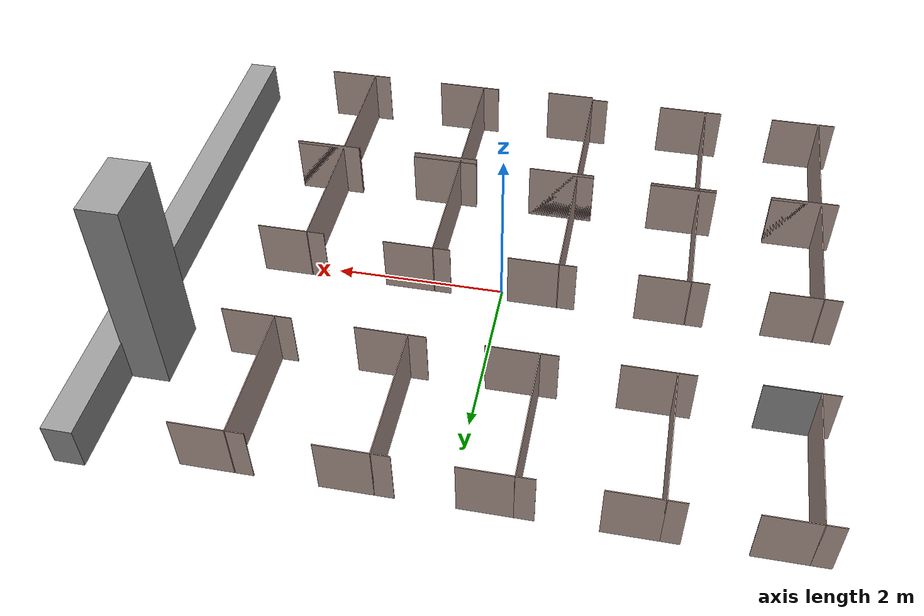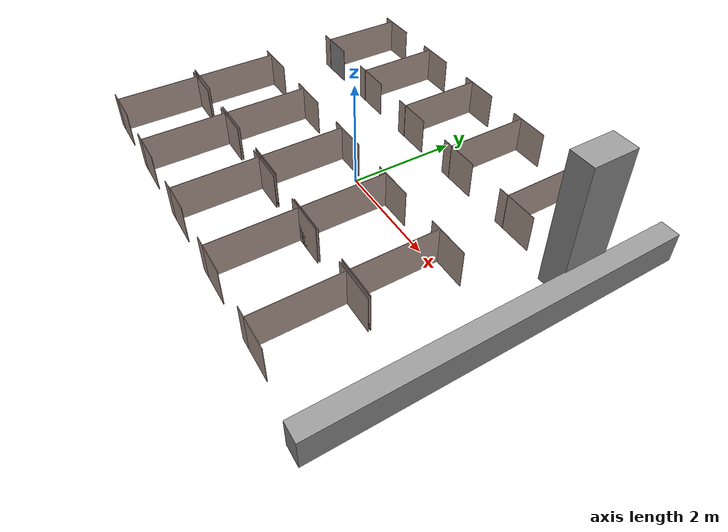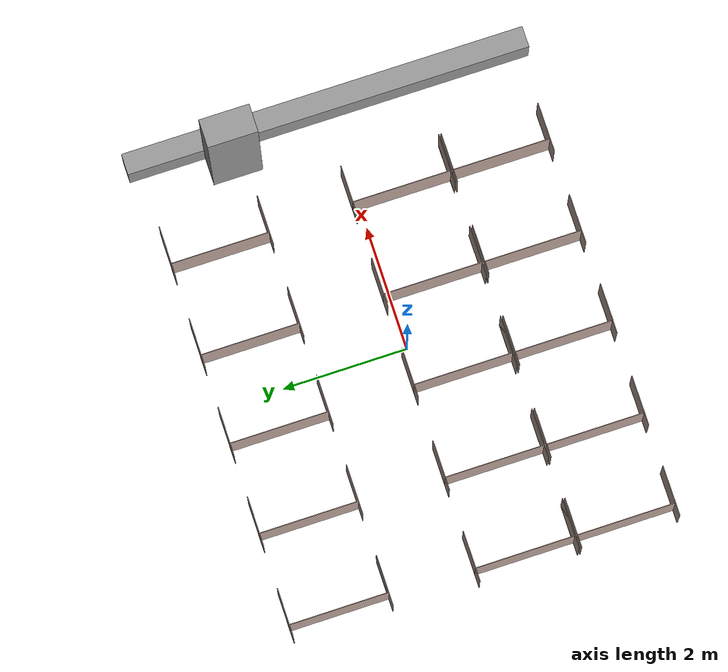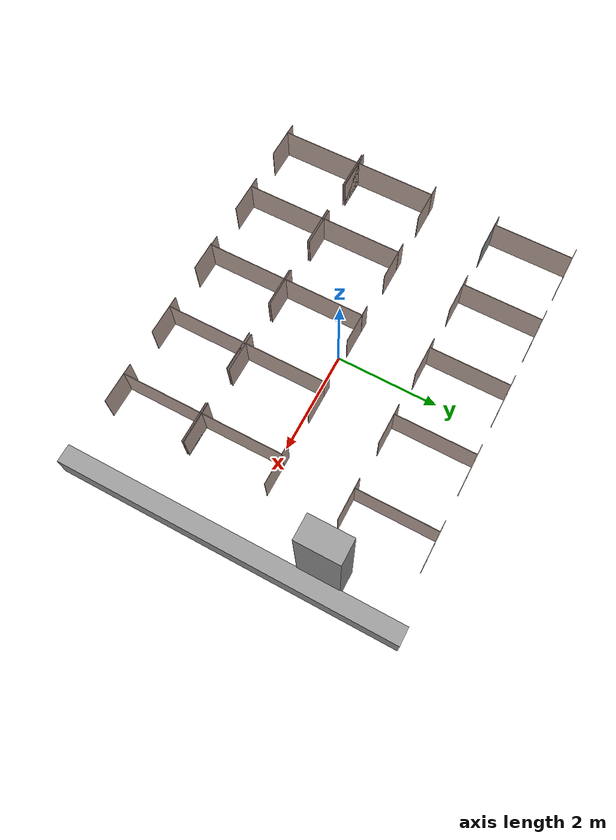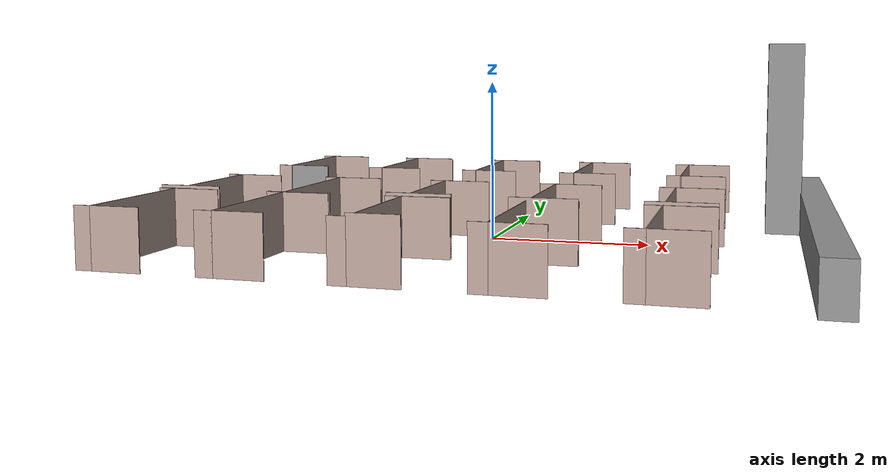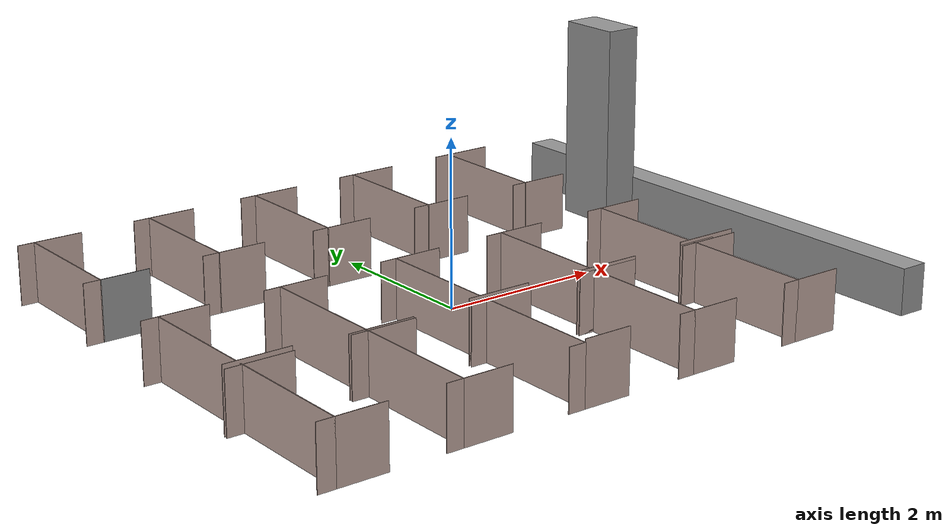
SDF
<?xml version='1.0'?>
<sdf version='1.6'>
  <model name='change_class4'>
    <pose frame=''>0.163402 0.008075 0 0 -0 0</pose>
    <link name='Wall_10'>
      <collision name='Wall_10_Collision'>
        <geometry>
          <box>
            <size>0.598 0.01 0.715</size>
          </box>
        </geometry>
        <pose frame=''>0 0 0.3575 0 -0 0</pose>
      </collision>
      <visual name='Wall_10_Visual'>
        <pose frame=''>0 0 0.3575 0 -0 0</pose>
        <geometry>
          <box>
            <size>0.598 0.01 0.715</size>
          </box>
        </geometry>
        <material>
          <script>
            <uri>file://media/materials/scripts/gazebo.material</uri>
            <name>Gazebo/Grey</name>
          </script>
          <ambient>0.760784 0.662745 0.627451 1</ambient>
        </material>
      </visual>
      <pose frame=''>-0.535402 1.46893 0 0 -0 0</pose>
    </link>
    <link name='Wall_12'>
      <collision name='Wall_12_Collision'>
        <geometry>
          <box>
            <size>0.598 0.01 0.715</size>
          </box>
        </geometry>
        <pose frame=''>0 0 0.3575 0 -0 0</pose>
      </collision>
      <visual name='Wall_12_Visual'>
        <pose frame=''>0 0 0.3575 0 -0 0</pose>
        <geometry>
          <box>
            <size>0.598 0.01 0.715</size>
          </box>
        </geometry>
        <material>
          <script>
            <uri>file://media/materials/scripts/gazebo.material</uri>
            <name>Gazebo/Grey</name>
          </script>
          <ambient>0.760784 0.662745 0.627451 1</ambient>
        </material>
      </visual>
      <pose frame=''>0.901598 1.46893 0 0 -0 0</pose>
    </link>
    <link name='Wall_138'>
      <collision name='Wall_138_Collision'>
        <geometry>
          <box>
            <size>0.593 0.01 0.715</size>
          </box>
        </geometry>
        <pose frame=''>0 0 0.3575 0 -0 0</pose>
      </collision>
      <visual name='Wall_138_Visual'>
        <pose frame=''>0 0 0.3575 0 -0 0</pose>
        <geometry>
          <box>
            <size>0.593 0.01 0.715</size>
          </box>
        </geometry>
        <material>
          <script>
            <uri>file://media/materials/scripts/gazebo.material</uri>
            <name>Gazebo/Grey</name>
          </script>
          <ambient>0.760784 0.662745 0.627451 1</ambient>
        </material>
      </visual>
      <pose frame=''>-3.4519 3.04292 0 0 -0 0</pose>
    </link>
    <link name='Wall_14'>
      <collision name='Wall_14_Collision'>
        <geometry>
          <box>
            <size>0.61 0.01 0.715</size>
          </box>
        </geometry>
        <pose frame=''>0 0 0.3575 0 -0 0</pose>
      </collision>
      <visual name='Wall_14_Visual'>
        <pose frame=''>0 0 0.3575 0 -0 0</pose>
        <geometry>
          <box>
            <size>0.61 0.01 0.715</size>
          </box>
        </geometry>
        <material>
          <script>
            <uri>file://media/materials/scripts/gazebo.material</uri>
            <name>Gazebo/Grey</name>
          </script>
          <ambient>0.760784 0.662745 0.627451 1</ambient>
        </material>
      </visual>
      <pose frame=''>2.3996 1.46893 0 0 -0 0</pose>
    </link>
    <link name='Wall_140'>
      <collision name='Wall_140_Collision'>
        <geometry>
          <box>
            <size>0.598 0.01 0.715</size>
          </box>
        </geometry>
        <pose frame=''>0 0 0.3575 0 -0 0</pose>
      </collision>
      <visual name='Wall_140_Visual'>
        <pose frame=''>0 0 0.3575 0 -0 0</pose>
        <geometry>
          <box>
            <size>0.598 0.01 0.715</size>
          </box>
        </geometry>
        <material>
          <script>
            <uri>file://media/materials/scripts/gazebo.material</uri>
            <name>Gazebo/Grey</name>
          </script>
          <ambient>0.760784 0.662745 0.627451 1</ambient>
        </material>
      </visual>
      <pose frame=''>-1.9864 3.04292 0 0 -0 0</pose>
    </link>
    <link name='Wall_143'>
      <collision name='Wall_143_Collision'>
        <geometry>
          <box>
            <size>0.598 0.01 0.715</size>
          </box>
        </geometry>
        <pose frame=''>0 0 0.3575 0 -0 0</pose>
      </collision>
      <visual name='Wall_143_Visual'>
        <pose frame=''>0 0 0.3575 0 -0 0</pose>
        <geometry>
          <box>
            <size>0.598 0.01 0.715</size>
          </box>
        </geometry>
        <material>
          <script>
            <uri>file://media/materials/scripts/gazebo.material</uri>
            <name>Gazebo/Grey</name>
          </script>
          <ambient>0.760784 0.662745 0.627451 1</ambient>
        </material>
      </visual>
      <pose frame=''>-0.535402 3.04292 0 0 -0 0</pose>
    </link>
    <link name='Wall_147'>
      <collision name='Wall_147_Collision'>
        <geometry>
          <box>
            <size>0.598 0.01 0.715</size>
          </box>
        </geometry>
        <pose frame=''>0 0 0.3575 0 -0 0</pose>
      </collision>
      <visual name='Wall_147_Visual'>
        <pose frame=''>0 0 0.3575 0 -0 0</pose>
        <geometry>
          <box>
            <size>0.598 0.01 0.715</size>
          </box>
        </geometry>
        <material>
          <script>
            <uri>file://media/materials/scripts/gazebo.material</uri>
            <name>Gazebo/Grey</name>
          </script>
          <ambient>0.760784 0.662745 0.627451 1</ambient>
        </material>
      </visual>
      <pose frame=''>0.901598 3.04292 0 0 -0 0</pose>
    </link>
    <link name='Wall_153'>
      <collision name='Wall_153_Collision'>
        <geometry>
          <box>
            <size>0.609517 0.01 0.715</size>
          </box>
        </geometry>
        <pose frame=''>0 0 0.3575 0 -0 0</pose>
      </collision>
      <visual name='Wall_153_Visual'>
        <pose frame=''>0 0 0.3575 0 -0 0</pose>
        <geometry>
          <box>
            <size>0.609517 0.01 0.715</size>
          </box>
        </geometry>
        <material>
          <script>
            <uri>file://media/materials/scripts/gazebo.material</uri>
            <name>Gazebo/Grey</name>
          </script>
          <ambient>0.760784 0.662745 0.627451 1</ambient>
        </material>
      </visual>
      <pose frame=''>2.3996 3.04292 0 0 -0 0</pose>
    </link>
    <link name='Wall_16'>
      <collision name='Wall_16_Collision'>
        <geometry>
          <box>
            <size>0.598 0.01 0.715</size>
          </box>
        </geometry>
        <pose frame=''>0 0 0.3575 0 -0 0</pose>
      </collision>
      <visual name='Wall_16_Visual'>
        <pose frame=''>0 0 0.3575 0 -0 0</pose>
        <geometry>
          <box>
            <size>0.598 0.01 0.715</size>
          </box>
        </geometry>
        <material>
          <script>
            <uri>file://media/materials/scripts/gazebo.material</uri>
            <name>Gazebo/Grey</name>
          </script>
          <ambient>0.760784 0.662745 0.627451 1</ambient>
        </material>
      </visual>
      <pose frame=''>-3.5094 0.108925 0 0 -0 0</pose>
    </link>
    <link name='Wall_18'>
      <collision name='Wall_18_Collision'>
        <geometry>
          <box>
            <size>0.598 0.01 0.715</size>
          </box>
        </geometry>
        <pose frame=''>0 0 0.3575 0 -0 0</pose>
      </collision>
      <visual name='Wall_18_Visual'>
        <pose frame=''>0 0 0.3575 0 -0 0</pose>
        <geometry>
          <box>
            <size>0.598 0.01 0.715</size>
          </box>
        </geometry>
        <material>
          <script>
            <uri>file://media/materials/scripts/gazebo.material</uri>
            <name>Gazebo/Grey</name>
          </script>
          <ambient>0.760784 0.662745 0.627451 1</ambient>
        </material>
      </visual>
      <pose frame=''>-2.0494 0.108925 0 0 -0 0</pose>
    </link>
    <link name='Wall_193'>
      <collision name='Wall_193_Collision'>
        <geometry>
          <box>
            <size>1.584 0.01 0.715</size>
          </box>
        </geometry>
        <pose frame=''>0 0 0.3575 0 -0 0</pose>
      </collision>
      <visual name='Wall_193_Visual'>
        <pose frame=''>0 0 0.3575 0 -0 0</pose>
        <geometry>
          <box>
            <size>1.584 0.01 0.715</size>
          </box>
        </geometry>
        <material>
          <script>
            <uri>file://media/materials/scripts/gazebo.material</uri>
            <name>Gazebo/Grey</name>
          </script>
          <ambient>0.760784 0.662745 0.627451 1</ambient>
        </material>
      </visual>
      <pose frame=''>-2.2804 2.25592 0 0 0 -1.5708</pose>
    </link>
    <link name='Wall_195'>
      <collision name='Wall_195_Collision'>
        <geometry>
          <box>
            <size>1.584 0.01 0.715</size>
          </box>
        </geometry>
        <pose frame=''>0 0 0.3575 0 -0 0</pose>
      </collision>
      <visual name='Wall_195_Visual'>
        <pose frame=''>0 0 0.3575 0 -0 0</pose>
        <geometry>
          <box>
            <size>1.584 0.01 0.715</size>
          </box>
        </geometry>
        <material>
          <script>
            <uri>file://media/materials/scripts/gazebo.material</uri>
            <name>Gazebo/Grey</name>
          </script>
          <ambient>0.760784 0.662745 0.627451 1</ambient>
        </material>
      </visual>
      <pose frame=''>-0.829402 2.25592 0 0 0 -1.5708</pose>
    </link>
    <link name='Wall_197'>
      <collision name='Wall_197_Collision'>
        <geometry>
          <box>
            <size>1.584 0.01 0.715</size>
          </box>
        </geometry>
        <pose frame=''>0 0 0.3575 0 -0 0</pose>
      </collision>
      <visual name='Wall_197_Visual'>
        <pose frame=''>0 0 0.3575 0 -0 0</pose>
        <geometry>
          <box>
            <size>1.584 0.01 0.715</size>
          </box>
        </geometry>
        <material>
          <script>
            <uri>file://media/materials/scripts/gazebo.material</uri>
            <name>Gazebo/Grey</name>
          </script>
          <ambient>0.760784 0.662745 0.627451 1</ambient>
        </material>
      </visual>
      <pose frame=''>0.607598 2.25592 0 0 0 -1.5708</pose>
    </link>
    <link name='Wall_199'>
      <collision name='Wall_199_Collision'>
        <geometry>
          <box>
            <size>1.58405 0.01 0.715</size>
          </box>
        </geometry>
        <pose frame=''>0 0 0.3575 0 -0 0</pose>
      </collision>
      <visual name='Wall_199_Visual'>
        <pose frame=''>0 0 0.3575 0 -0 0</pose>
        <geometry>
          <box>
            <size>1.58405 0.01 0.715</size>
          </box>
        </geometry>
        <material>
          <script>
            <uri>file://media/materials/scripts/gazebo.material</uri>
            <name>Gazebo/Grey</name>
          </script>
          <ambient>0.760784 0.662745 0.627451 1</ambient>
        </material>
      </visual>
      <pose frame=''>2.0996 2.25592 0 0 0 -1.5708</pose>
    </link>
    <link name='Wall_20'>
      <collision name='Wall_20_Collision'>
        <geometry>
          <box>
            <size>0.598 0.01 0.715</size>
          </box>
        </geometry>
        <pose frame=''>0 0 0.3575 0 -0 0</pose>
      </collision>
      <visual name='Wall_20_Visual'>
        <pose frame=''>0 0 0.3575 0 -0 0</pose>
        <geometry>
          <box>
            <size>0.598 0.01 0.715</size>
          </box>
        </geometry>
        <material>
          <script>
            <uri>file://media/materials/scripts/gazebo.material</uri>
            <name>Gazebo/Grey</name>
          </script>
          <ambient>0.760784 0.662745 0.627451 1</ambient>
        </material>
      </visual>
      <pose frame=''>-0.547402 0.108925 0 0 -0 0</pose>
    </link>
    <link name='Wall_203'>
      <collision name='Wall_203_Collision'>
        <geometry>
          <box>
            <size>3.194 0.01 0.715</size>
          </box>
        </geometry>
        <pose frame=''>0 0 0.3575 0 -0 0</pose>
      </collision>
      <visual name='Wall_203_Visual'>
        <pose frame=''>0 0 0.3575 0 -0 0</pose>
        <geometry>
          <box>
            <size>3.194 0.01 0.715</size>
          </box>
        </geometry>
        <material>
          <script>
            <uri>file://media/materials/scripts/gazebo.material</uri>
            <name>Gazebo/Grey</name>
          </script>
          <ambient>0.760784 0.662745 0.627451 1</ambient>
        </material>
      </visual>
      <pose frame=''>-3.8034 -1.48307 0 0 0 -1.5708</pose>
    </link>
    <link name='Wall_205'>
      <collision name='Wall_205_Collision'>
        <geometry>
          <box>
            <size>3.194 0.01 0.715</size>
          </box>
        </geometry>
        <pose frame=''>0 0 0.3575 0 -0 0</pose>
      </collision>
      <visual name='Wall_205_Visual'>
        <pose frame=''>0 0 0.3575 0 -0 0</pose>
        <geometry>
          <box>
            <size>3.194 0.01 0.715</size>
          </box>
        </geometry>
        <material>
          <script>
            <uri>file://media/materials/scripts/gazebo.material</uri>
            <name>Gazebo/Grey</name>
          </script>
          <ambient>0.760784 0.662745 0.627451 1</ambient>
        </material>
      </visual>
      <pose frame=''>-2.3434 -1.48307 0 0 0 -1.5708</pose>
    </link>
    <link name='Wall_207'>
      <collision name='Wall_207_Collision'>
        <geometry>
          <box>
            <size>3.194 0.01 0.715</size>
          </box>
        </geometry>
        <pose frame=''>0 0 0.3575 0 -0 0</pose>
      </collision>
      <visual name='Wall_207_Visual'>
        <pose frame=''>0 0 0.3575 0 -0 0</pose>
        <geometry>
          <box>
            <size>3.194 0.01 0.715</size>
          </box>
        </geometry>
        <material>
          <script>
            <uri>file://media/materials/scripts/gazebo.material</uri>
            <name>Gazebo/Grey</name>
          </script>
          <ambient>0.760784 0.662745 0.627451 1</ambient>
        </material>
      </visual>
      <pose frame=''>-0.841402 -1.48307 0 0 0 -1.5708</pose>
    </link>
    <link name='Wall_209'>
      <collision name='Wall_209_Collision'>
        <geometry>
          <box>
            <size>3.194 0.01 0.715</size>
          </box>
        </geometry>
        <pose frame=''>0 0 0.3575 0 -0 0</pose>
      </collision>
      <visual name='Wall_209_Visual'>
        <pose frame=''>0 0 0.3575 0 -0 0</pose>
        <geometry>
          <box>
            <size>3.194 0.01 0.715</size>
          </box>
        </geometry>
        <material>
          <script>
            <uri>file://media/materials/scripts/gazebo.material</uri>
            <name>Gazebo/Grey</name>
          </script>
          <ambient>0.760784 0.662745 0.627451 1</ambient>
        </material>
      </visual>
      <pose frame=''>0.636598 -1.48307 0 0 0 -1.5708</pose>
    </link>
    <link name='Wall_211'>
      <collision name='Wall_211_Collision'>
        <geometry>
          <box>
            <size>3.194 0.01 0.715</size>
          </box>
        </geometry>
        <pose frame=''>0 0 0.3575 0 -0 0</pose>
      </collision>
      <visual name='Wall_211_Visual'>
        <pose frame=''>0 0 0.3575 0 -0 0</pose>
        <geometry>
          <box>
            <size>3.194 0.01 0.715</size>
          </box>
        </geometry>
        <material>
          <script>
            <uri>file://media/materials/scripts/gazebo.material</uri>
            <name>Gazebo/Grey</name>
          </script>
          <ambient>0.760784 0.662745 0.627451 1</ambient>
        </material>
      </visual>
      <pose frame=''>2.1506 -1.48307 0 0 0 -1.5708</pose>
    </link>
    <link name='Wall_214'>
      <collision name='Wall_214_Collision'>
        <geometry>
          <box>
            <size>0.01 0.01 0.715</size>
          </box>
        </geometry>
        <pose frame=''>0 0 0.3575 0 -0 0</pose>
      </collision>
      <visual name='Wall_214_Visual'>
        <pose frame=''>0 0 0.3575 0 -0 0</pose>
        <geometry>
          <box>
            <size>0.01 0.01 0.715</size>
          </box>
        </geometry>
        <material>
          <script>
            <uri>file://media/materials/scripts/gazebo.material</uri>
            <name>Gazebo/Grey</name>
          </script>
          <ambient>0.760784 0.662745 0.627451 1</ambient>
        </material>
      </visual>
      <pose frame=''>-3.7434 1.46893 0 0 -0 0</pose>
    </link>
    <link name='Wall_216'>
      <collision name='Wall_216_Collision'>
        <geometry>
          <box>
            <size>0.01 0.01 0.715</size>
          </box>
        </geometry>
        <pose frame=''>0 0 0.3575 0 -0 0</pose>
      </collision>
      <visual name='Wall_216_Visual'>
        <pose frame=''>0 0 0.3575 0 -0 0</pose>
        <geometry>
          <box>
            <size>0.01 0.01 0.715</size>
          </box>
        </geometry>
        <material>
          <script>
            <uri>file://media/materials/scripts/gazebo.material</uri>
            <name>Gazebo/Grey</name>
          </script>
          <ambient>0.760784 0.662745 0.627451 1</ambient>
        </material>
      </visual>
      <pose frame=''>-3.7434 1.46893 0 0 -0 0</pose>
    </link>
    <link name='Wall_218'>
      <collision name='Wall_218_Collision'>
        <geometry>
          <box>
            <size>0.01 0.01 0.715</size>
          </box>
        </geometry>
        <pose frame=''>0 0 0.3575 0 -0 0</pose>
      </collision>
      <visual name='Wall_218_Visual'>
        <pose frame=''>0 0 0.3575 0 -0 0</pose>
        <geometry>
          <box>
            <size>0.01 0.01 0.715</size>
          </box>
        </geometry>
        <material>
          <script>
            <uri>file://media/materials/scripts/gazebo.material</uri>
            <name>Gazebo/Grey</name>
          </script>
          <ambient>1 1 1 1</ambient>
        </material>
      </visual>
      <pose frame=''>-3.7434 3.04292 0 0 -0 0</pose>
    </link>
    <link name='Wall_222'>
      <collision name='Wall_222_Collision'>
        <geometry>
          <box>
            <size>1.584 0.01 0.715</size>
          </box>
        </geometry>
        <pose frame=''>0 0 0.3575 0 -0 0</pose>
      </collision>
      <visual name='Wall_222_Visual'>
        <pose frame=''>0 0 0.3575 0 -0 0</pose>
        <geometry>
          <box>
            <size>1.584 0.01 0.715</size>
          </box>
        </geometry>
        <material>
          <script>
            <uri>file://media/materials/scripts/gazebo.material</uri>
            <name>Gazebo/Grey</name>
          </script>
          <ambient>0.760784 0.662745 0.627451 1</ambient>
        </material>
      </visual>
      <pose frame=''>-3.7434 2.25592 0 0 -0 1.5708</pose>
    </link>
    <link name='Wall_224'>
      <collision name='Wall_224_Collision'>
        <geometry>
          <box>
            <size>0.21 0.01 0.715</size>
          </box>
        </geometry>
        <pose frame=''>0 0 0.3575 0 -0 0</pose>
      </collision>
      <visual name='Wall_224_Visual'>
        <pose frame=''>0 0 0.3575 0 -0 0</pose>
        <geometry>
          <box>
            <size>0.21 0.01 0.715</size>
          </box>
        </geometry>
        <material>
          <script>
            <uri>file://media/materials/scripts/gazebo.material</uri>
            <name>Gazebo/Grey</name>
          </script>
          <ambient>0.760784 0.662745 0.627451 1</ambient>
        </material>
      </visual>
      <pose frame=''>-3.8434 3.04292 0 0 -0 0</pose>
    </link>
    <link name='Wall_226'>
      <collision name='Wall_226_Collision'>
        <geometry>
          <box>
            <size>0.21 0.01 0.715</size>
          </box>
        </geometry>
        <pose frame=''>0 0 0.3575 0 -0 0</pose>
      </collision>
      <visual name='Wall_226_Visual'>
        <pose frame=''>0 0 0.3575 0 -0 0</pose>
        <geometry>
          <box>
            <size>0.21 0.01 0.715</size>
          </box>
        </geometry>
        <material>
          <script>
            <uri>file://media/materials/scripts/gazebo.material</uri>
            <name>Gazebo/Grey</name>
          </script>
          <ambient>0.760784 0.662745 0.627451 1</ambient>
        </material>
      </visual>
      <pose frame=''>-3.8434 1.46893 0 0 -0 0</pose>
    </link>
    <link name='Wall_228'>
      <collision name='Wall_228_Collision'>
        <geometry>
          <box>
            <size>0.21 0.01 0.715</size>
          </box>
        </geometry>
        <pose frame=''>0 0 0.3575 0 -0 0</pose>
      </collision>
      <visual name='Wall_228_Visual'>
        <pose frame=''>0 0 0.3575 0 -0 0</pose>
        <geometry>
          <box>
            <size>0.21 0.01 0.715</size>
          </box>
        </geometry>
        <material>
          <script>
            <uri>file://media/materials/scripts/gazebo.material</uri>
            <name>Gazebo/Grey</name>
          </script>
          <ambient>0.760784 0.662745 0.627451 1</ambient>
        </material>
      </visual>
      <pose frame=''>-2.3804 3.04292 0 0 -0 0</pose>
    </link>
    <link name='Wall_230'>
      <collision name='Wall_230_Collision'>
        <geometry>
          <box>
            <size>0.21 0.01 0.715</size>
          </box>
        </geometry>
        <pose frame=''>0 0 0.3575 0 -0 0</pose>
      </collision>
      <visual name='Wall_230_Visual'>
        <pose frame=''>0 0 0.3575 0 -0 0</pose>
        <geometry>
          <box>
            <size>0.21 0.01 0.715</size>
          </box>
        </geometry>
        <material>
          <script>
            <uri>file://media/materials/scripts/gazebo.material</uri>
            <name>Gazebo/Grey</name>
          </script>
          <ambient>0.760784 0.662745 0.627451 1</ambient>
        </material>
      </visual>
      <pose frame=''>-2.3804 1.46893 0 0 -0 0</pose>
    </link>
    <link name='Wall_232'>
      <collision name='Wall_232_Collision'>
        <geometry>
          <box>
            <size>0.21 0.01 0.715</size>
          </box>
        </geometry>
        <pose frame=''>0 0 0.3575 0 -0 0</pose>
      </collision>
      <visual name='Wall_232_Visual'>
        <pose frame=''>0 0 0.3575 0 -0 0</pose>
        <geometry>
          <box>
            <size>0.21 0.01 0.715</size>
          </box>
        </geometry>
        <material>
          <script>
            <uri>file://media/materials/scripts/gazebo.material</uri>
            <name>Gazebo/Grey</name>
          </script>
          <ambient>0.760784 0.662745 0.627451 1</ambient>
        </material>
      </visual>
      <pose frame=''>-0.929402 1.46893 0 0 -0 0</pose>
    </link>
    <link name='Wall_234'>
      <collision name='Wall_234_Collision'>
        <geometry>
          <box>
            <size>0.21 0.01 0.715</size>
          </box>
        </geometry>
        <pose frame=''>0 0 0.3575 0 -0 0</pose>
      </collision>
      <visual name='Wall_234_Visual'>
        <pose frame=''>0 0 0.3575 0 -0 0</pose>
        <geometry>
          <box>
            <size>0.21 0.01 0.715</size>
          </box>
        </geometry>
        <material>
          <script>
            <uri>file://media/materials/scripts/gazebo.material</uri>
            <name>Gazebo/Grey</name>
          </script>
          <ambient>0.760784 0.662745 0.627451 1</ambient>
        </material>
      </visual>
      <pose frame=''>-0.929402 3.04292 0 0 -0 0</pose>
    </link>
    <link name='Wall_236'>
      <collision name='Wall_236_Collision'>
        <geometry>
          <box>
            <size>0.21 0.01 0.715</size>
          </box>
        </geometry>
        <pose frame=''>0 0 0.3575 0 -0 0</pose>
      </collision>
      <visual name='Wall_236_Visual'>
        <pose frame=''>0 0 0.3575 0 -0 0</pose>
        <geometry>
          <box>
            <size>0.21 0.01 0.715</size>
          </box>
        </geometry>
        <material>
          <script>
            <uri>file://media/materials/scripts/gazebo.material</uri>
            <name>Gazebo/Grey</name>
          </script>
          <ambient>0.760784 0.662745 0.627451 1</ambient>
        </material>
      </visual>
      <pose frame=''>0.507598 1.46893 0 0 -0 0</pose>
    </link>
    <link name='Wall_238'>
      <collision name='Wall_238_Collision'>
        <geometry>
          <box>
            <size>0.21 0.01 0.715</size>
          </box>
        </geometry>
        <pose frame=''>0 0 0.3575 0 -0 0</pose>
      </collision>
      <visual name='Wall_238_Visual'>
        <pose frame=''>0 0 0.3575 0 -0 0</pose>
        <geometry>
          <box>
            <size>0.21 0.01 0.715</size>
          </box>
        </geometry>
        <material>
          <script>
            <uri>file://media/materials/scripts/gazebo.material</uri>
            <name>Gazebo/Grey</name>
          </script>
          <ambient>0.760784 0.662745 0.627451 1</ambient>
        </material>
      </visual>
      <pose frame=''>0.507598 3.04292 0 0 -0 0</pose>
    </link>
    <link name='Wall_24'>
      <collision name='Wall_24_Collision'>
        <geometry>
          <box>
            <size>0.598 0.01 0.715</size>
          </box>
        </geometry>
        <pose frame=''>0 0 0.3575 0 -0 0</pose>
      </collision>
      <visual name='Wall_24_Visual'>
        <pose frame=''>0 0 0.3575 0 -0 0</pose>
        <geometry>
          <box>
            <size>0.598 0.01 0.715</size>
          </box>
        </geometry>
        <material>
          <script>
            <uri>file://media/materials/scripts/gazebo.material</uri>
            <name>Gazebo/Grey</name>
          </script>
          <ambient>0.760784 0.662745 0.627451 1</ambient>
        </material>
      </visual>
      <pose frame=''>2.4446 0.108925 0 0 -0 0</pose>
    </link>
    <link name='Wall_240'>
      <collision name='Wall_240_Collision'>
        <geometry>
          <box>
            <size>0.198 0.01 0.715</size>
          </box>
        </geometry>
        <pose frame=''>0 0 0.3575 0 -0 0</pose>
      </collision>
      <visual name='Wall_240_Visual'>
        <pose frame=''>0 0 0.3575 0 -0 0</pose>
        <geometry>
          <box>
            <size>0.198 0.01 0.715</size>
          </box>
        </geometry>
        <material>
          <script>
            <uri>file://media/materials/scripts/gazebo.material</uri>
            <name>Gazebo/Grey</name>
          </script>
          <ambient>0.760784 0.662745 0.627451 1</ambient>
        </material>
      </visual>
      <pose frame=''>2.0056 1.46893 0 0 -0 0</pose>
    </link>
    <link name='Wall_242'>
      <collision name='Wall_242_Collision'>
        <geometry>
          <box>
            <size>0.21 0.01 0.715</size>
          </box>
        </geometry>
        <pose frame=''>0 0 0.3575 0 -0 0</pose>
      </collision>
      <visual name='Wall_242_Visual'>
        <pose frame=''>0 0 0.3575 0 -0 0</pose>
        <geometry>
          <box>
            <size>0.21 0.01 0.715</size>
          </box>
        </geometry>
        <material>
          <script>
            <uri>file://media/materials/scripts/gazebo.material</uri>
            <name>Gazebo/Grey</name>
          </script>
          <ambient>0.760784 0.662745 0.627451 1</ambient>
        </material>
      </visual>
      <pose frame=''>1.9996 3.04292 0 0 -0 0</pose>
    </link>
    <link name='Wall_244'>
      <collision name='Wall_244_Collision'>
        <geometry>
          <box>
            <size>0.21 0.01 0.715</size>
          </box>
        </geometry>
        <pose frame=''>0 0 0.3575 0 -0 0</pose>
      </collision>
      <visual name='Wall_244_Visual'>
        <pose frame=''>0 0 0.3575 0 -0 0</pose>
        <geometry>
          <box>
            <size>0.21 0.01 0.715</size>
          </box>
        </geometry>
        <material>
          <script>
            <uri>file://media/materials/scripts/gazebo.material</uri>
            <name>Gazebo/Grey</name>
          </script>
          <ambient>0.760784 0.662745 0.627451 1</ambient>
        </material>
      </visual>
      <pose frame=''>-3.9034 0.108925 0 0 -0 0</pose>
    </link>
    <link name='Wall_246'>
      <collision name='Wall_246_Collision'>
        <geometry>
          <box>
            <size>0.21 0.01 0.715</size>
          </box>
        </geometry>
        <pose frame=''>0 0 0.3575 0 -0 0</pose>
      </collision>
      <visual name='Wall_246_Visual'>
        <pose frame=''>0 0 0.3575 0 -0 0</pose>
        <geometry>
          <box>
            <size>0.21 0.01 0.715</size>
          </box>
        </geometry>
        <material>
          <script>
            <uri>file://media/materials/scripts/gazebo.material</uri>
            <name>Gazebo/Grey</name>
          </script>
          <ambient>0.760784 0.662745 0.627451 1</ambient>
        </material>
      </visual>
      <pose frame=''>-3.9034 -3.07508 0 0 -0 0</pose>
    </link>
    <link name='Wall_248'>
      <collision name='Wall_248_Collision'>
        <geometry>
          <box>
            <size>0.21 0.01 0.715</size>
          </box>
        </geometry>
        <pose frame=''>0 0 0.3575 0 -0 0</pose>
      </collision>
      <visual name='Wall_248_Visual'>
        <pose frame=''>0 0 0.3575 0 -0 0</pose>
        <geometry>
          <box>
            <size>0.21 0.01 0.715</size>
          </box>
        </geometry>
        <material>
          <script>
            <uri>file://media/materials/scripts/gazebo.material</uri>
            <name>Gazebo/Grey</name>
          </script>
          <ambient>0.760784 0.662745 0.627451 1</ambient>
        </material>
      </visual>
      <pose frame=''>-2.4434 0.108925 0 0 -0 0</pose>
    </link>
    <link name='Wall_250'>
      <collision name='Wall_250_Collision'>
        <geometry>
          <box>
            <size>0.21 0.01 0.715</size>
          </box>
        </geometry>
        <pose frame=''>0 0 0.3575 0 -0 0</pose>
      </collision>
      <visual name='Wall_250_Visual'>
        <pose frame=''>0 0 0.3575 0 -0 0</pose>
        <geometry>
          <box>
            <size>0.21 0.01 0.715</size>
          </box>
        </geometry>
        <material>
          <script>
            <uri>file://media/materials/scripts/gazebo.material</uri>
            <name>Gazebo/Grey</name>
          </script>
          <ambient>0.760784 0.662745 0.627451 1</ambient>
        </material>
      </visual>
      <pose frame=''>-2.4434 -3.07508 0 0 -0 0</pose>
    </link>
    <link name='Wall_26'>
      <collision name='Wall_26_Collision'>
        <geometry>
          <box>
            <size>0.798 0.01 0.751</size>
          </box>
        </geometry>
        <pose frame=''>0 0 0.3755 0 -0 0</pose>
      </collision>
      <visual name='Wall_26_Visual'>
        <pose frame=''>0 0 0.3755 0 -0 0</pose>
        <geometry>
          <box>
            <size>0.798 0.01 0.751</size>
          </box>
        </geometry>
        <material>
          <script>
            <uri>file://media/materials/scripts/gazebo.material</uri>
            <name>Gazebo/Grey</name>
          </script>
          <ambient>0.760784 0.662745 0.627451 1</ambient>
        </material>
      </visual>
      <pose frame=''>-3.6094 -1.47107 0 0 -0 0</pose>
    </link>
    <link name='Wall_28'>
      <collision name='Wall_28_Collision'>
        <geometry>
          <box>
            <size>0.798 0.01 0.715</size>
          </box>
        </geometry>
        <pose frame=''>0 0 0.3575 0 -0 0</pose>
      </collision>
      <visual name='Wall_28_Visual'>
        <pose frame=''>0 0 0.3575 0 -0 0</pose>
        <geometry>
          <box>
            <size>0.798 0.01 0.715</size>
          </box>
        </geometry>
        <material>
          <script>
            <uri>file://media/materials/scripts/gazebo.material</uri>
            <name>Gazebo/Grey</name>
          </script>
          <ambient>0.760784 0.662745 0.627451 1</ambient>
        </material>
      </visual>
      <pose frame=''>-2.1534 -1.47107 0 0 -0 0</pose>
    </link>
    <link name='Wall_287'>
      <collision name='Wall_287_Collision'>
        <geometry>
          <box>
            <size>0.21 0.01 0.715</size>
          </box>
        </geometry>
        <pose frame=''>0 0 0.3575 0 -0 0</pose>
      </collision>
      <visual name='Wall_287_Visual'>
        <pose frame=''>0 0 0.3575 0 -0 0</pose>
        <geometry>
          <box>
            <size>0.21 0.01 0.715</size>
          </box>
        </geometry>
        <material>
          <script>
            <uri>file://media/materials/scripts/gazebo.material</uri>
            <name>Gazebo/Grey</name>
          </script>
          <ambient>0.760784 0.662745 0.627451 1</ambient>
        </material>
      </visual>
      <pose frame=''>-0.941402 0.108925 0 0 -0 0</pose>
    </link>
    <link name='Wall_289'>
      <collision name='Wall_289_Collision'>
        <geometry>
          <box>
            <size>0.21 0.01 0.715</size>
          </box>
        </geometry>
        <pose frame=''>0 0 0.3575 0 -0 0</pose>
      </collision>
      <visual name='Wall_289_Visual'>
        <pose frame=''>0 0 0.3575 0 -0 0</pose>
        <geometry>
          <box>
            <size>0.21 0.01 0.715</size>
          </box>
        </geometry>
        <material>
          <script>
            <uri>file://media/materials/scripts/gazebo.material</uri>
            <name>Gazebo/Grey</name>
          </script>
          <ambient>0.760784 0.662745 0.627451 1</ambient>
        </material>
      </visual>
      <pose frame=''>-0.941402 -3.07508 0 0 -0 0</pose>
    </link>
    <link name='Wall_291'>
      <collision name='Wall_291_Collision'>
        <geometry>
          <box>
            <size>0.21 0.01 0.715</size>
          </box>
        </geometry>
        <pose frame=''>0 0 0.3575 0 -0 0</pose>
      </collision>
      <visual name='Wall_291_Visual'>
        <pose frame=''>0 0 0.3575 0 -0 0</pose>
        <geometry>
          <box>
            <size>0.21 0.01 0.715</size>
          </box>
        </geometry>
        <material>
          <script>
            <uri>file://media/materials/scripts/gazebo.material</uri>
            <name>Gazebo/Grey</name>
          </script>
          <ambient>0.760784 0.662745 0.627451 1</ambient>
        </material>
      </visual>
      <pose frame=''>0.536598 0.108925 0 0 -0 0</pose>
    </link>
    <link name='Wall_293'>
      <collision name='Wall_293_Collision'>
        <geometry>
          <box>
            <size>0.21 0.01 0.715</size>
          </box>
        </geometry>
        <pose frame=''>0 0 0.3575 0 -0 0</pose>
      </collision>
      <visual name='Wall_293_Visual'>
        <pose frame=''>0 0 0.3575 0 -0 0</pose>
        <geometry>
          <box>
            <size>0.21 0.01 0.715</size>
          </box>
        </geometry>
        <material>
          <script>
            <uri>file://media/materials/scripts/gazebo.material</uri>
            <name>Gazebo/Grey</name>
          </script>
          <ambient>0.760784 0.662745 0.627451 1</ambient>
        </material>
      </visual>
      <pose frame=''>0.536598 -3.07508 0 0 -0 0</pose>
    </link>
    <link name='Wall_295'>
      <collision name='Wall_295_Collision'>
        <geometry>
          <box>
            <size>0.21 0.01 0.715</size>
          </box>
        </geometry>
        <pose frame=''>0 0 0.3575 0 -0 0</pose>
      </collision>
      <visual name='Wall_295_Visual'>
        <pose frame=''>0 0 0.3575 0 -0 0</pose>
        <geometry>
          <box>
            <size>0.21 0.01 0.715</size>
          </box>
        </geometry>
        <material>
          <script>
            <uri>file://media/materials/scripts/gazebo.material</uri>
            <name>Gazebo/Grey</name>
          </script>
          <ambient>0.760784 0.662745 0.627451 1</ambient>
        </material>
      </visual>
      <pose frame=''>2.0506 0.108925 0 0 -0 0</pose>
    </link>
    <link name='Wall_297'>
      <collision name='Wall_297_Collision'>
        <geometry>
          <box>
            <size>0.21 0.01 0.715</size>
          </box>
        </geometry>
        <pose frame=''>0 0 0.3575 0 -0 0</pose>
      </collision>
      <visual name='Wall_297_Visual'>
        <pose frame=''>0 0 0.3575 0 -0 0</pose>
        <geometry>
          <box>
            <size>0.21 0.01 0.715</size>
          </box>
        </geometry>
        <material>
          <script>
            <uri>file://media/materials/scripts/gazebo.material</uri>
            <name>Gazebo/Grey</name>
          </script>
          <ambient>0.760784 0.662745 0.627451 1</ambient>
        </material>
      </visual>
      <pose frame=''>2.0506 -3.07508 0 0 -0 0</pose>
    </link>
    <link name='Wall_299'>
      <collision name='Wall_299_Collision'>
        <geometry>
          <box>
            <size>6.495 0.34 0.555</size>
          </box>
        </geometry>
        <pose frame=''>0 0 0.2775 0 -0 0</pose>
      </collision>
      <visual name='Wall_299_Visual'>
        <pose frame=''>0 0 0.2775 0 -0 0</pose>
        <geometry>
          <box>
            <size>6.495 0.34 0.555</size>
          </box>
        </geometry>
        <material>
          <script>
            <uri>file://media/materials/scripts/gazebo.material</uri>
            <name>Gazebo/Grey</name>
          </script>
          <ambient>0.713726 0.713726 0.713726 1</ambient>
        </material>
      </visual>
      <pose frame=''>3.8384 0 0 0 0 -1.5708</pose>
    </link>
    <link name='Wall_30'>
      <collision name='Wall_30_Collision'>
        <geometry>
          <box>
            <size>0.798 0.01 0.751</size>
          </box>
        </geometry>
        <pose frame=''>0 0 0.3755 0 -0 0</pose>
      </collision>
      <visual name='Wall_30_Visual'>
        <pose frame=''>0 0 0.3755 0 -0 0</pose>
        <geometry>
          <box>
            <size>0.798 0.01 0.751</size>
          </box>
        </geometry>
        <material>
          <script>
            <uri>file://media/materials/scripts/gazebo.material</uri>
            <name>Gazebo/Grey</name>
          </script>
          <ambient>0.760784 0.662745 0.627451 1</ambient>
        </material>
      </visual>
      <pose frame=''>-0.649402 -1.47107 0 0 -0 0</pose>
    </link>
    <link name='Wall_301'>
      <collision name='Wall_301_Collision'>
        <geometry>
          <box>
            <size>0.795 0.45 2.5</size>
          </box>
        </geometry>
        <pose frame=''>0 0 1.25 0 -0 0</pose>
      </collision>
      <visual name='Wall_301_Visual'>
        <pose frame=''>0 0 1.25 0 -0 0</pose>
        <geometry>
          <box>
            <size>0.795 0.45 2.5</size>
          </box>
        </geometry>
        <material>
          <script>
            <uri>file://media/materials/scripts/gazebo.material</uri>
            <name>Gazebo/Grey</name>
          </script>
          <ambient>1 1 1 1</ambient>
        </material>
      </visual>
      <pose frame=''>3.4546 1.62443 0 0 0 -1.5708</pose>
    </link>
    <link name='Wall_32'>
      <collision name='Wall_32_Collision'>
        <geometry>
          <box>
            <size>0.598 0.01 0.715</size>
          </box>
        </geometry>
        <pose frame=''>0 0 0.3575 0 -0 0</pose>
      </collision>
      <visual name='Wall_32_Visual'>
        <pose frame=''>0 0 0.3575 0 -0 0</pose>
        <geometry>
          <box>
            <size>0.598 0.01 0.715</size>
          </box>
        </geometry>
        <material>
          <script>
            <uri>file://media/materials/scripts/gazebo.material</uri>
            <name>Gazebo/Grey</name>
          </script>
          <ambient>0.760784 0.662745 0.627451 1</ambient>
        </material>
      </visual>
      <pose frame=''>0.930598 0.108925 0 0 -0 0</pose>
    </link>
    <link name='Wall_36'>
      <collision name='Wall_36_Collision'>
        <geometry>
          <box>
            <size>0.799 0.01 0.751</size>
          </box>
        </geometry>
        <pose frame=''>0 0 0.3755 0 -0 0</pose>
      </collision>
      <visual name='Wall_36_Visual'>
        <pose frame=''>0 0 0.3755 0 -0 0</pose>
        <geometry>
          <box>
            <size>0.799 0.01 0.751</size>
          </box>
        </geometry>
        <material>
          <script>
            <uri>file://media/materials/scripts/gazebo.material</uri>
            <name>Gazebo/Grey</name>
          </script>
          <ambient>0.760784 0.662745 0.627451 1</ambient>
        </material>
      </visual>
      <pose frame=''>0.830598 -1.51107 0 0 -0 0</pose>
    </link>
    <link name='Wall_38'>
      <collision name='Wall_38_Collision'>
        <geometry>
          <box>
            <size>0.798 0.01 0.751</size>
          </box>
        </geometry>
        <pose frame=''>0 0 0.3755 0 -0 0</pose>
      </collision>
      <visual name='Wall_38_Visual'>
        <pose frame=''>0 0 0.3755 0 -0 0</pose>
        <geometry>
          <box>
            <size>0.798 0.01 0.751</size>
          </box>
        </geometry>
        <material>
          <script>
            <uri>file://media/materials/scripts/gazebo.material</uri>
            <name>Gazebo/Grey</name>
          </script>
          <ambient>0.760784 0.662745 0.627451 1</ambient>
        </material>
      </visual>
      <pose frame=''>2.3446 -1.47107 0 0 -0 0</pose>
    </link>
    <link name='Wall_40'>
      <collision name='Wall_40_Collision'>
        <geometry>
          <box>
            <size>0.798 0.01 0.715</size>
          </box>
        </geometry>
        <pose frame=''>0 0 0.3575 0 -0 0</pose>
      </collision>
      <visual name='Wall_40_Visual'>
        <pose frame=''>0 0 0.3575 0 -0 0</pose>
        <geometry>
          <box>
            <size>0.798 0.01 0.715</size>
          </box>
        </geometry>
        <material>
          <script>
            <uri>file://media/materials/scripts/gazebo.material</uri>
            <name>Gazebo/Grey</name>
          </script>
          <ambient>0.760784 0.662745 0.627451 1</ambient>
        </material>
      </visual>
      <pose frame=''>2.3446 -1.47107 0 0 -0 0</pose>
    </link>
    <link name='Wall_42'>
      <collision name='Wall_42_Collision'>
        <geometry>
          <box>
            <size>0.798 0.01 0.715</size>
          </box>
        </geometry>
        <pose frame=''>0 0 0.3575 0 -0 0</pose>
      </collision>
      <visual name='Wall_42_Visual'>
        <pose frame=''>0 0 0.3575 0 -0 0</pose>
        <geometry>
          <box>
            <size>0.798 0.01 0.715</size>
          </box>
        </geometry>
        <material>
          <script>
            <uri>file://media/materials/scripts/gazebo.material</uri>
            <name>Gazebo/Grey</name>
          </script>
          <ambient>0.760784 0.662745 0.627451 1</ambient>
        </material>
      </visual>
      <pose frame=''>2.3446 -1.51107 0 0 -0 0</pose>
    </link>
    <link name='Wall_44'>
      <collision name='Wall_44_Collision'>
        <geometry>
          <box>
            <size>0.799 0.01 0.751</size>
          </box>
        </geometry>
        <pose frame=''>0 0 0.3755 0 -0 0</pose>
      </collision>
      <visual name='Wall_44_Visual'>
        <pose frame=''>0 0 0.3755 0 -0 0</pose>
        <geometry>
          <box>
            <size>0.799 0.01 0.751</size>
          </box>
        </geometry>
        <material>
          <script>
            <uri>file://media/materials/scripts/gazebo.material</uri>
            <name>Gazebo/Grey</name>
          </script>
          <ambient>0.760784 0.662745 0.627451 1</ambient>
        </material>
      </visual>
      <pose frame=''>0.830598 -1.51107 0 0 -0 0</pose>
    </link>
    <link name='Wall_46'>
      <collision name='Wall_46_Collision'>
        <geometry>
          <box>
            <size>0.798 0.01 0.715</size>
          </box>
        </geometry>
        <pose frame=''>0 0 0.3575 0 -0 0</pose>
      </collision>
      <visual name='Wall_46_Visual'>
        <pose frame=''>0 0 0.3575 0 -0 0</pose>
        <geometry>
          <box>
            <size>0.798 0.01 0.715</size>
          </box>
        </geometry>
        <material>
          <script>
            <uri>file://media/materials/scripts/gazebo.material</uri>
            <name>Gazebo/Grey</name>
          </script>
          <ambient>0.760784 0.662745 0.627451 1</ambient>
        </material>
      </visual>
      <pose frame=''>0.830598 -1.51107 0 0 -0 0</pose>
    </link>
    <link name='Wall_48'>
      <collision name='Wall_48_Collision'>
        <geometry>
          <box>
            <size>0.799 0.01 0.715</size>
          </box>
        </geometry>
        <pose frame=''>0 0 0.3575 0 -0 0</pose>
      </collision>
      <visual name='Wall_48_Visual'>
        <pose frame=''>0 0 0.3575 0 -0 0</pose>
        <geometry>
          <box>
            <size>0.799 0.01 0.715</size>
          </box>
        </geometry>
        <material>
          <script>
            <uri>file://media/materials/scripts/gazebo.material</uri>
            <name>Gazebo/Grey</name>
          </script>
          <ambient>0.760784 0.662745 0.627451 1</ambient>
        </material>
      </visual>
      <pose frame=''>0.830598 -1.47107 0 0 -0 0</pose>
    </link>
    <link name='Wall_53'>
      <collision name='Wall_53_Collision'>
        <geometry>
          <box>
            <size>0.798 0.01 0.715</size>
          </box>
        </geometry>
        <pose frame=''>0 0 0.3575 0 -0 0</pose>
      </collision>
      <visual name='Wall_53_Visual'>
        <pose frame=''>0 0 0.3575 0 -0 0</pose>
        <geometry>
          <box>
            <size>0.798 0.01 0.715</size>
          </box>
        </geometry>
        <material>
          <script>
            <uri>file://media/materials/scripts/gazebo.material</uri>
            <name>Gazebo/Grey</name>
          </script>
          <ambient>0.760784 0.662745 0.627451 1</ambient>
        </material>
      </visual>
      <pose frame=''>-0.649402 -1.47107 0 0 -0 0</pose>
    </link>
    <link name='Wall_55'>
      <collision name='Wall_55_Collision'>
        <geometry>
          <box>
            <size>0.798 0.01 0.715</size>
          </box>
        </geometry>
        <pose frame=''>0 0 0.3575 0 -0 0</pose>
      </collision>
      <visual name='Wall_55_Visual'>
        <pose frame=''>0 0 0.3575 0 -0 0</pose>
        <geometry>
          <box>
            <size>0.798 0.01 0.715</size>
          </box>
        </geometry>
        <material>
          <script>
            <uri>file://media/materials/scripts/gazebo.material</uri>
            <name>Gazebo/Grey</name>
          </script>
          <ambient>0.760784 0.662745 0.627451 1</ambient>
        </material>
      </visual>
      <pose frame=''>-0.649402 -1.51107 0 0 -0 0</pose>
    </link>
    <link name='Wall_57'>
      <collision name='Wall_57_Collision'>
        <geometry>
          <box>
            <size>0.798 0.01 0.715</size>
          </box>
        </geometry>
        <pose frame=''>0 0 0.3575 0 -0 0</pose>
      </collision>
      <visual name='Wall_57_Visual'>
        <pose frame=''>0 0 0.3575 0 -0 0</pose>
        <geometry>
          <box>
            <size>0.798 0.01 0.715</size>
          </box>
        </geometry>
        <material>
          <script>
            <uri>file://media/materials/scripts/gazebo.material</uri>
            <name>Gazebo/Grey</name>
          </script>
          <ambient>0.760784 0.662745 0.627451 1</ambient>
        </material>
      </visual>
      <pose frame=''>-2.1534 -1.51107 0 0 -0 0</pose>
    </link>
    <link name='Wall_59'>
      <collision name='Wall_59_Collision'>
        <geometry>
          <box>
            <size>0.798 0.01 0.715</size>
          </box>
        </geometry>
        <pose frame=''>0 0 0.3575 0 -0 0</pose>
      </collision>
      <visual name='Wall_59_Visual'>
        <pose frame=''>0 0 0.3575 0 -0 0</pose>
        <geometry>
          <box>
            <size>0.798 0.01 0.715</size>
          </box>
        </geometry>
        <material>
          <script>
            <uri>file://media/materials/scripts/gazebo.material</uri>
            <name>Gazebo/Grey</name>
          </script>
          <ambient>0.760784 0.662745 0.627451 1</ambient>
        </material>
      </visual>
      <pose frame=''>-3.6094 -1.47107 0 0 -0 0</pose>
    </link>
    <link name='Wall_6'>
      <collision name='Wall_6_Collision'>
        <geometry>
          <box>
            <size>0.598 0.01 0.715</size>
          </box>
        </geometry>
        <pose frame=''>0 0 0.3575 0 -0 0</pose>
      </collision>
      <visual name='Wall_6_Visual'>
        <pose frame=''>0 0 0.3575 0 -0 0</pose>
        <geometry>
          <box>
            <size>0.598 0.01 0.715</size>
          </box>
        </geometry>
        <material>
          <script>
            <uri>file://media/materials/scripts/gazebo.material</uri>
            <name>Gazebo/Grey</name>
          </script>
          <ambient>0.494118 0.494118 0.494118 1</ambient>
        </material>
      </visual>
      <pose frame=''>-3.4494 1.46893 0 0 -0 0</pose>
    </link>
    <link name='Wall_61'>
      <collision name='Wall_61_Collision'>
        <geometry>
          <box>
            <size>0.798 0.01 0.715</size>
          </box>
        </geometry>
        <pose frame=''>0 0 0.3575 0 -0 0</pose>
      </collision>
      <visual name='Wall_61_Visual'>
        <pose frame=''>0 0 0.3575 0 -0 0</pose>
        <geometry>
          <box>
            <size>0.798 0.01 0.715</size>
          </box>
        </geometry>
        <material>
          <script>
            <uri>file://media/materials/scripts/gazebo.material</uri>
            <name>Gazebo/Grey</name>
          </script>
          <ambient>0.760784 0.662745 0.627451 1</ambient>
        </material>
      </visual>
      <pose frame=''>-3.6094 -1.51107 0 0 -0 0</pose>
    </link>
    <link name='Wall_65'>
      <collision name='Wall_65_Collision'>
        <geometry>
          <box>
            <size>0.598 0.01 0.715</size>
          </box>
        </geometry>
        <pose frame=''>0 0 0.3575 0 -0 0</pose>
      </collision>
      <visual name='Wall_65_Visual'>
        <pose frame=''>0 0 0.3575 0 -0 0</pose>
        <geometry>
          <box>
            <size>0.598 0.01 0.715</size>
          </box>
        </geometry>
        <material>
          <script>
            <uri>file://media/materials/scripts/gazebo.material</uri>
            <name>Gazebo/Grey</name>
          </script>
          <ambient>0.760784 0.662745 0.627451 1</ambient>
        </material>
      </visual>
      <pose frame=''>-3.5094 -3.07508 0 0 -0 0</pose>
    </link>
    <link name='Wall_67'>
      <collision name='Wall_67_Collision'>
        <geometry>
          <box>
            <size>0.598 0.01 0.715</size>
          </box>
        </geometry>
        <pose frame=''>0 0 0.3575 0 -0 0</pose>
      </collision>
      <visual name='Wall_67_Visual'>
        <pose frame=''>0 0 0.3575 0 -0 0</pose>
        <geometry>
          <box>
            <size>0.598 0.01 0.715</size>
          </box>
        </geometry>
        <material>
          <script>
            <uri>file://media/materials/scripts/gazebo.material</uri>
            <name>Gazebo/Grey</name>
          </script>
          <ambient>0.760784 0.662745 0.627451 1</ambient>
        </material>
      </visual>
      <pose frame=''>-2.0494 -3.07508 0 0 -0 0</pose>
    </link>
    <link name='Wall_69'>
      <collision name='Wall_69_Collision'>
        <geometry>
          <box>
            <size>0.596 0.01 0.751</size>
          </box>
        </geometry>
        <pose frame=''>0 0 0.3755 0 -0 0</pose>
      </collision>
      <visual name='Wall_69_Visual'>
        <pose frame=''>0 0 0.3755 0 -0 0</pose>
        <geometry>
          <box>
            <size>0.596 0.01 0.751</size>
          </box>
        </geometry>
        <material>
          <script>
            <uri>file://media/materials/scripts/gazebo.material</uri>
            <name>Gazebo/Grey</name>
          </script>
          <ambient>0.760784 0.662745 0.627451 1</ambient>
        </material>
      </visual>
      <pose frame=''>-0.548402 -3.07508 0 0 -0 0</pose>
    </link>
    <link name='Wall_72'>
      <collision name='Wall_72_Collision'>
        <geometry>
          <box>
            <size>0.598 0.01 0.715</size>
          </box>
        </geometry>
        <pose frame=''>0 0 0.3575 0 -0 0</pose>
      </collision>
      <visual name='Wall_72_Visual'>
        <pose frame=''>0 0 0.3575 0 -0 0</pose>
        <geometry>
          <box>
            <size>0.598 0.01 0.715</size>
          </box>
        </geometry>
        <material>
          <script>
            <uri>file://media/materials/scripts/gazebo.material</uri>
            <name>Gazebo/Grey</name>
          </script>
          <ambient>0.760784 0.662745 0.627451 1</ambient>
        </material>
      </visual>
      <pose frame=''>0.930598 -3.07508 0 0 -0 0</pose>
    </link>
    <link name='Wall_74'>
      <collision name='Wall_74_Collision'>
        <geometry>
          <box>
            <size>0.598 0.01 0.715</size>
          </box>
        </geometry>
        <pose frame=''>0 0 0.3575 0 -0 0</pose>
      </collision>
      <visual name='Wall_74_Visual'>
        <pose frame=''>0 0 0.3575 0 -0 0</pose>
        <geometry>
          <box>
            <size>0.598 0.01 0.715</size>
          </box>
        </geometry>
        <material>
          <script>
            <uri>file://media/materials/scripts/gazebo.material</uri>
            <name>Gazebo/Grey</name>
          </script>
          <ambient>0.760784 0.662745 0.627451 1</ambient>
        </material>
      </visual>
      <pose frame=''>2.4446 -3.07508 0 0 -0 0</pose>
    </link>
    <link name='Wall_8'>
      <collision name='Wall_8_Collision'>
        <geometry>
          <box>
            <size>0.598 0.01 0.715</size>
          </box>
        </geometry>
        <pose frame=''>0 0 0.3575 0 -0 0</pose>
      </collision>
      <visual name='Wall_8_Visual'>
        <pose frame=''>0 0 0.3575 0 -0 0</pose>
        <geometry>
          <box>
            <size>0.598 0.01 0.715</size>
          </box>
        </geometry>
        <material>
          <script>
            <uri>file://media/materials/scripts/gazebo.material</uri>
            <name>Gazebo/Grey</name>
          </script>
          <ambient>0.760784 0.662745 0.627451 1</ambient>
        </material>
      </visual>
      <pose frame=''>-1.9864 1.46893 0 0 -0 0</pose>
    </link>
    <static>1</static>
  </model>
</sdf>
